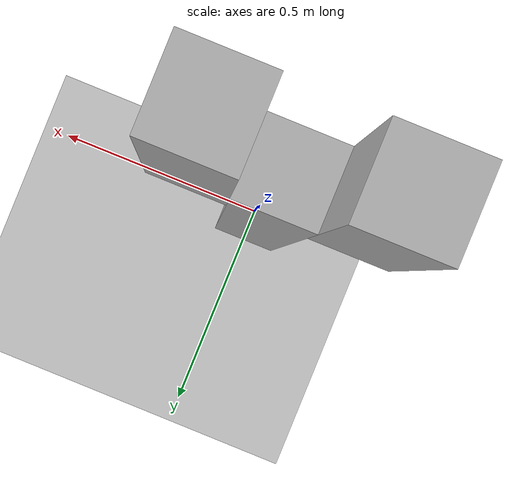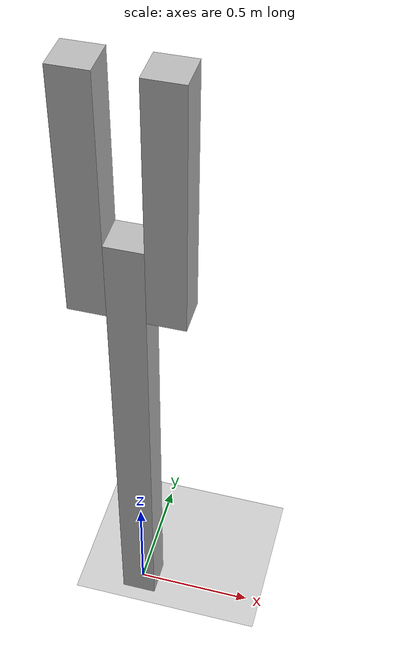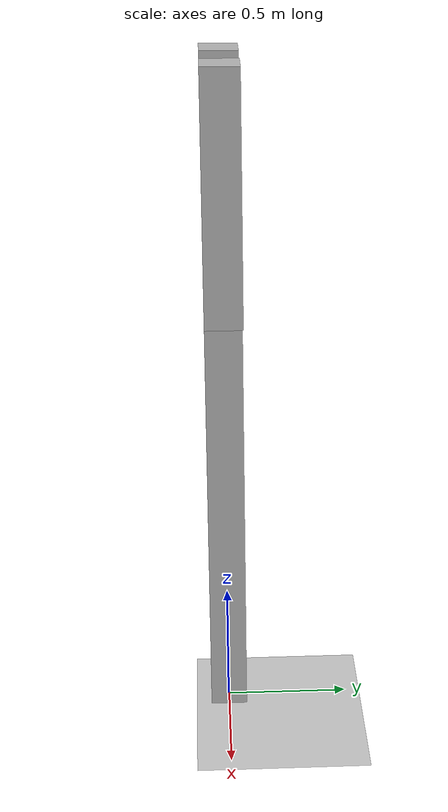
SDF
<?xml version="1.0"?>

<sdf version='1.11'>

  <world name="tutorial_controlboard">
    <light type="directional" name="sun">
      <cast_shadows>true</cast_shadows>
      <pose>0 0 10 0 0 0</pose>
      <diffuse>0.8 0.8 0.8 1</diffuse>
      <specular>0.2 0.2 0.2 1</specular>
      <attenuation>
        <range>1000</range>
        <constant>0.9</constant>
        <linear>0.01</linear>
        <quadratic>0.001</quadratic>
      </attenuation>
      <direction>-0.5 0.1 -0.9</direction>
    </light>

    <model name="ground_plane">
      <static>true</static>
      <link name="link">
        <collision name="collision">
          <geometry>
            <plane>
              <normal>0 0 1</normal>
              <size>100 100</size>
            </plane>
          </geometry>
        </collision>
        <visual name="visual">
          <geometry>
            <plane>
              <normal>0 0 1</normal>
              <size>100 100</size>
            </plane>
          </geometry>
          <material>
            <ambient>0.8 0.8 0.8 1</ambient>
            <diffuse>0.8 0.8 0.8 1</diffuse>
            <specular>0.8 0.8 0.8 1</specular>
          </material>
        </visual>
      </link>
    </model>

    <model name="coupled_pendulum">
      <joint name="fixed_base" type="revolute">
          <parent>world</parent>
          <child>base_link</child>
          <axis>
              <xyz>1 0 0</xyz>
              <limit>
                  <lower>-5</lower>
                  <upper>5</upper>
                  <effort>100</effort>
                  <velocity>100</velocity>
              </limit>
              <dynamics>
                  <damping>0.0</damping>
                  <spring_reference>0</spring_reference>
                  <spring_stiffness>0.0</spring_stiffness>
              </dynamics>
          </axis>
      </joint>
      <link name='base_link'>
        <inertial>
          <pose>0 0 0 0 0 0</pose>
          <mass>1000</mass>
          <inertia>
            <ixx>1</ixx>
            <ixy>0</ixy>
            <ixz>0</ixz>
            <iyy>1</iyy>
            <iyz>0</iyz>
            <izz>1</izz>
          </inertia>
        </inertial>
        <collision name='base_link_fixed_joint_lump__base_collision'>
          <pose>0 0 1 0 0 0</pose>
          <geometry>
            <box>
              <size>0.14999999999999999 0.14999999999999999 2.1499999999999999</size>
            </box>
          </geometry>
        </collision>
        <visual name='base_link_fixed_joint_lump__base_visual'>
          <pose>0 0 1 0 0 0</pose>
          <geometry>
            <box>
              <size>0.14999999999999999 0.14999999999999999 2.1499999999999999</size>
            </box>
          </geometry>
        </visual>
      </link>
      <joint name='lower_joint' type='revolute'>
        <pose relative_to='base_link'>0.14999999999999999 0 1.75 3.1415000000000002 0 0</pose>
        <parent>base_link</parent>
        <child>link2</child>
        <axis>
          <xyz>1 0 0</xyz>
          <limit>
            <lower>-5</lower>
            <upper>5</upper>
            <effort>100</effort>
            <velocity>100</velocity>
          </limit>
          <dynamics>
            <spring_reference>0</spring_reference>
            <spring_stiffness>0</spring_stiffness>
          </dynamics>
        </axis>
      </joint>
      <link name='link2'>
        <pose relative_to='lower_joint'>0 0 0 0 0 0</pose>
        <inertial>
          <pose>0 0 -0.90000000000000002 -0.30000000000000004 0 0</pose>
          <mass>1</mass>
          <inertia>
            <ixx>1</ixx>
            <ixy>0</ixy>
            <ixz>0</ixz>
            <iyy>1</iyy>
            <iyz>0</iyz>
            <izz>1</izz>
          </inertia>
        </inertial>
        <visual name='link2_visual'>
          <pose>0 0 -0.5 0 0 0</pose>
          <geometry>
            <box>
              <size>0.14999999999999999 0.14999999999999999 1</size>
            </box>
          </geometry>
        </visual>
      </link>
      <joint name='upper_joint' type='revolute'>
        <pose relative_to='base_link'>-0.14999999999999999 0 1.75 3.1415000000000002 0 0</pose>
        <parent>base_link</parent>
        <child>link1</child>
        <axis>
          <xyz>1 0 0</xyz>
          <limit>
            <lower>-5</lower>
            <upper>5</upper>
            <effort>100</effort>
            <velocity>100</velocity>
          </limit>
          <dynamics>
            <spring_reference>0</spring_reference>
            <spring_stiffness>0</spring_stiffness>
          </dynamics>
        </axis>
      </joint>
      <link name='link1'>
        <pose relative_to='upper_joint'>0 0 0 0 0 0</pose>
        <inertial>
          <pose>0 0 -0.90000000000000002 0 0 0</pose>
          <mass>1</mass>
          <inertia>
            <ixx>1</ixx>
            <ixy>0</ixy>
            <ixz>0</ixz>
            <iyy>1</iyy>
            <iyz>0</iyz>
            <izz>1</izz>
          </inertia>
        </inertial>
        <visual name='link1_visual'>
          <pose>0 0 -0.5 0 0 0</pose>
          <geometry>
            <box>
              <size>0.14999999999999999 0.14999999999999999 1</size>
            </box>
          </geometry>
        </visual>
      </link>

      <plugin name="gzyarp::ControlBoard" filename="gz-sim-yarp-controlboard-system">
        <yarpConfigurationFile>
          model://conf/gazebo_controlboard_coupling.ini
        </yarpConfigurationFile>
        <initialConfiguration>0.0</initialConfiguration>
      </plugin>
      <plugin name="gzyarp::RobotInterface" filename="gz-sim-yarp-robotinterface-system">
      <yarpRobotInterfaceConfigurationFile>model://conf/coupled_pendulum_nws.xml</yarpRobotInterfaceConfigurationFile>
      </plugin>

      <frame name='fake_base_fixed_joint' attached_to='base_link'>
        <pose>0 0 0 0 0 0</pose>
      </frame>
      <frame name='base' attached_to='fake_base_fixed_joint'>
        <pose>0 0 0 0 0 0</pose>
      </frame>
    </model>

  </world>
</sdf>
